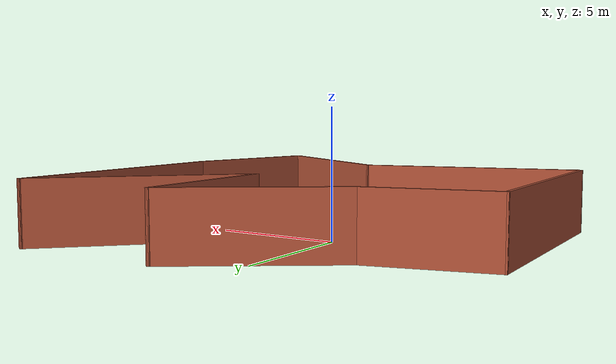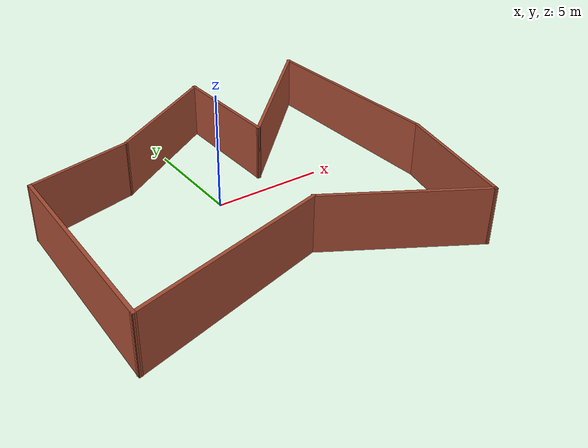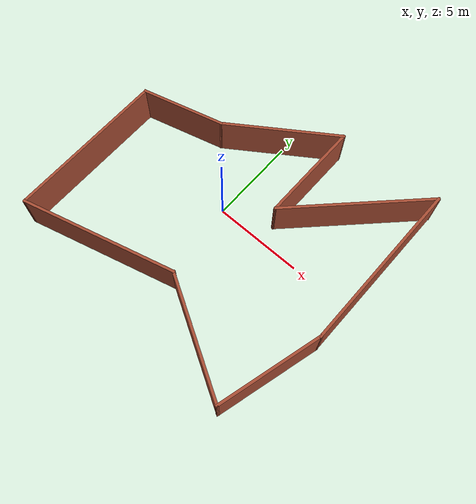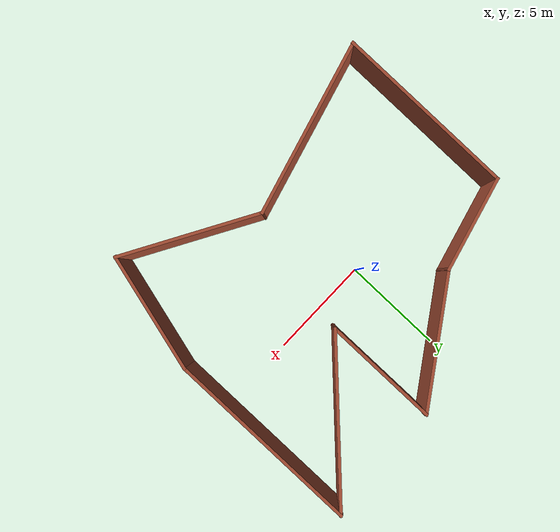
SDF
<?xml version='1.0'?>
<sdf version='1.7'>
  <model name='world01.world'>
    <pose>0.70132 -0.666723 0 0 -0 0</pose>
    <link name='Wall_0'>
      <collision name='Wall_0_Collision'>
        <geometry>
          <box>
            <size>4.75 0.15 2.5</size>
          </box>
        </geometry>
        <pose>0 0 1.25 0 -0 0</pose>
      </collision>
      <visual name='Wall_0_Visual'>
        <pose>0 0 1.25 0 -0 0</pose>
        <geometry>
          <box>
            <size>4.75 0.15 2.5</size>
          </box>
        </geometry>
        <material>
          <script>
            <uri>file://media/materials/scripts/gazebo.material</uri>
            <name>Gazebo/Bricks</name>
          </script>
          <ambient>1 1 1 1</ambient>
        </material>
        <meta>
          <layer>0</layer>
        </meta>
      </visual>
      <pose>-5.66214 3.0173 0 0 -0 -2.87979</pose>
    </link>
    <link name='Wall_1'>
      <collision name='Wall_1_Collision'>
        <geometry>
          <box>
            <size>9 0.15 2.5</size>
          </box>
        </geometry>
        <pose>0 0 1.25 0 -0 0</pose>
      </collision>
      <visual name='Wall_1_Visual'>
        <pose>0 0 1.25 0 -0 0</pose>
        <geometry>
          <box>
            <size>9 0.15 2.5</size>
          </box>
        </geometry>
        <material>
          <script>
            <uri>file://media/materials/scripts/gazebo.material</uri>
            <name>Gazebo/Bricks</name>
          </script>
          <ambient>1 1 1 1</ambient>
        </material>
        <meta>
          <layer>0</layer>
        </meta>
      </visual>
      <pose>-7.88377 -2.00298 0 0 -0 -1.5708</pose>
    </link>
    <link name='Wall_2'>
      <collision name='Wall_2_Collision'>
        <geometry>
          <box>
            <size>8.75 0.15 2.5</size>
          </box>
        </geometry>
        <pose>0 0 1.25 0 -0 0</pose>
      </collision>
      <visual name='Wall_2_Visual'>
        <pose>0 0 1.25 0 -0 0</pose>
        <geometry>
          <box>
            <size>8.75 0.15 2.5</size>
          </box>
        </geometry>
        <material>
          <script>
            <uri>file://media/materials/scripts/gazebo.material</uri>
            <name>Gazebo/Bricks</name>
          </script>
          <ambient>1 1 1 1</ambient>
        </material>
        <meta>
          <layer>0</layer>
        </meta>
      </visual>
      <pose>-3.73029 -5.31506 0 0 -0 0.261799</pose>
    </link>
    <link name='Wall_3'>
      <collision name='Wall_3_Collision'>
        <geometry>
          <box>
            <size>7 0.15 2.5</size>
          </box>
        </geometry>
        <pose>0 0 1.25 0 -0 0</pose>
      </collision>
      <visual name='Wall_3_Visual'>
        <pose>0 0 1.25 0 -0 0</pose>
        <geometry>
          <box>
            <size>7 0.15 2.5</size>
          </box>
        </geometry>
        <material>
          <script>
            <uri>file://media/materials/scripts/gazebo.material</uri>
            <name>Gazebo/Bricks</name>
          </script>
          <ambient>1 1 1 1</ambient>
        </material>
        <meta>
          <layer>0</layer>
        </meta>
      </visual>
      <pose>3.38933 -5.91464 0 0 -0 -0.523599</pose>
    </link>
    <link name='Wall_4'>
      <collision name='Wall_4_Collision'>
        <geometry>
          <box>
            <size>6 0.15 2.5</size>
          </box>
        </geometry>
        <pose>0 0 1.25 0 -0 0</pose>
      </collision>
      <visual name='Wall_4_Visual'>
        <pose>0 0 1.25 0 -0 0</pose>
        <geometry>
          <box>
            <size>6 0.15 2.5</size>
          </box>
        </geometry>
        <material>
          <script>
            <uri>file://media/materials/scripts/gazebo.material</uri>
            <name>Gazebo/Bricks</name>
          </script>
          <ambient>1 1 1 1</ambient>
        </material>
        <meta>
          <layer>0</layer>
        </meta>
      </visual>
      <pose>7.11251 -4.80181 0 0 -0 1.309</pose>
    </link>
    <link name='Wall_5'>
      <collision name='Wall_5_Collision'>
        <geometry>
          <box>
            <size>9.75 0.15 2.5</size>
          </box>
        </geometry>
        <pose>0 0 1.25 0 -0 0</pose>
      </collision>
      <visual name='Wall_5_Visual'>
        <pose>0 0 1.25 0 -0 0</pose>
        <geometry>
          <box>
            <size>9.75 0.15 2.5</size>
          </box>
        </geometry>
        <material>
          <script>
            <uri>file://media/materials/scripts/gazebo.material</uri>
            <name>Gazebo/Bricks</name>
          </script>
          <ambient>1 1 1 1</ambient>
        </material>
        <meta>
          <layer>0</layer>
        </meta>
      </visual>
      <pose>7.86956 2.82353 0 0 -0 1.5708</pose>
    </link>
    <link name='Wall_6'>
      <collision name='Wall_6_Collision'>
        <geometry>
          <box>
            <size>8.5 0.15 2.5</size>
          </box>
        </geometry>
        <pose>0 0 1.25 0 -0 0</pose>
      </collision>
      <visual name='Wall_6_Visual'>
        <pose>0 0 1.25 0 -0 0</pose>
        <geometry>
          <box>
            <size>8.5 0.15 2.5</size>
          </box>
        </geometry>
        <material>
          <script>
            <uri>file://media/materials/scripts/gazebo.material</uri>
            <name>Gazebo/Bricks</name>
          </script>
          <ambient>1 1 1 1</ambient>
        </material>
        <meta>
          <layer>0</layer>
        </meta>
      </visual>
      <pose>4.91739 4.67136 0 0 -0 -2.35619</pose>
    </link>
    <link name='Wall_7'>
      <collision name='Wall_7_Collision'>
        <geometry>
          <box>
            <size>5.75 0.15 2.5</size>
          </box>
        </geometry>
        <pose>0 0 1.25 0 -0 0</pose>
      </collision>
      <visual name='Wall_7_Visual'>
        <pose>0 0 1.25 0 -0 0</pose>
        <geometry>
          <box>
            <size>5.75 0.15 2.5</size>
          </box>
        </geometry>
        <material>
          <script>
            <uri>file://media/materials/scripts/gazebo.material</uri>
            <name>Gazebo/Bricks</name>
          </script>
          <ambient>1 1 1 1</ambient>
        </material>
        <meta>
          <layer>0</layer>
        </meta>
      </visual>
      <pose>1.96522 4.51918 0 0 -0 1.5708</pose>
    </link>
    <link name='Wall_8'>
      <collision name='Wall_8_Collision'>
        <geometry>
          <box>
            <size>6.70445 0.15 2.5</size>
          </box>
        </geometry>
        <pose>0 0 1.25 0 -0 0</pose>
      </collision>
      <visual name='Wall_8_Visual'>
        <pose>0 0 1.25 0 -0 0</pose>
        <geometry>
          <box>
            <size>6.70445 0.15 2.5</size>
          </box>
        </geometry>
        <material>
          <script>
            <uri>file://media/materials/scripts/gazebo.material</uri>
            <name>Gazebo/Bricks</name>
          </script>
          <ambient>1 1 1 1</ambient>
        </material>
        <meta>
          <layer>0</layer>
        </meta>
      </visual>
      <pose>-0.737647 5.46588 0 0 -0 -2.54054</pose>
    </link>
    <static>1</static>
  </model>
</sdf>
